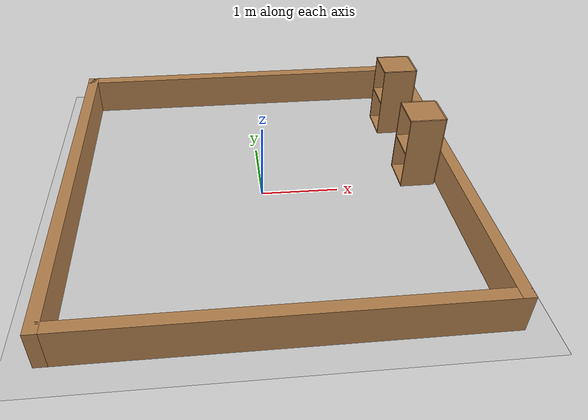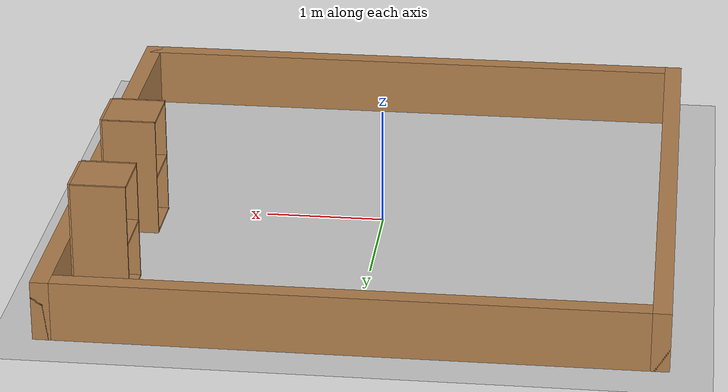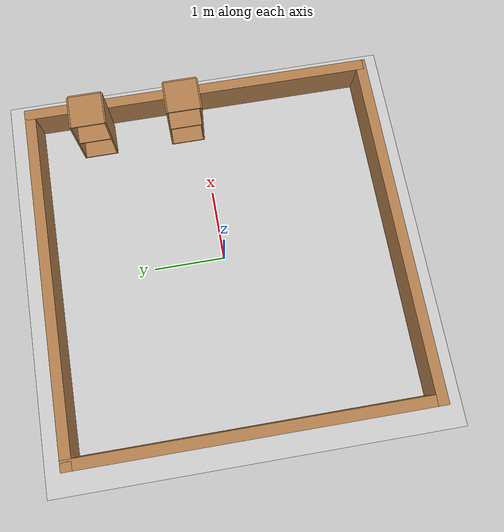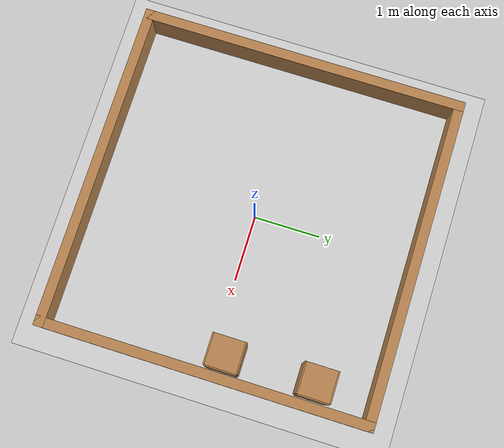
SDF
<sdf version="1.7">
 <world name="default">
  <model name="ground_plane">
   <static>1</static>
   <link name="link">
    <collision name="collision">
     <geometry><plane><normal>0 0 1</normal><size>100 100</size></plane></geometry>
     <surface><friction><ode><mu>100</mu><mu2>50</mu2></ode></friction></surface>
    </collision>
    <visual name="visual">
     <cast_shadows>0</cast_shadows>
     <geometry><plane><normal>0 0 1</normal><size>100 100</size></plane></geometry>
     <material>
      <script><uri>file://media/materials/scripts/gazebo.material</uri><name>Gazebo/Grey</name></script>
     </material>
    </visual>
   </link>
  </model>
  <light name="sun" type="directional">
   <pose>0 0 10 0 -0 0</pose>
   <diffuse>0.8 0.8 0.8 1</diffuse>
   <specular>0.2 0.2 0.2 1</specular>
   <attenuation>
    <range>1000</range>
    <constant>0.9</constant>
    <linear>0.01</linear>
    <quadratic>0.001</quadratic>
   </attenuation>
   <direction>-0.5 0.1 -0.9</direction>
   <spot><inner_angle>0</inner_angle><outer_angle>0</outer_angle><falloff>0</falloff></spot>
  </light>
  <scene><shadows>0</shadows><ambient>0.4 0.4 0.4 1</ambient><background>0.7 0.7 0.7 1</background></scene>
  <physics type="ode">
   <real_time_update_rate>1000</real_time_update_rate>
   <max_step_size>0.001</max_step_size>
   <real_time_factor>1</real_time_factor>
   <ode>
    <solver>
     <type>quick</type>
     <iters>150</iters>
     <precon_iters>0</precon_iters>
     <sor>1.4</sor>
     <use_dynamic_moi_rescaling>1</use_dynamic_moi_rescaling>
    </solver>
    <constraints>
     <cfm>1e-05</cfm>
     <erp>0.2</erp>
     <contact_max_correcting_vel>2000</contact_max_correcting_vel>
     <contact_surface_layer>0.01</contact_surface_layer>
    </constraints>
   </ode>
  </physics>
  <model name="turtlebot3_dqn_world">
   <pose>0.00548 -0.006455 0 0 -0 0</pose>
   <static>1</static>
   <frame name="turtlebot3_square::__model__" attached_to="turtlebot3_square::Wall_1">
    <pose relative_to="__model__">0 0 0 0 -0 0</pose>
   </frame>
   <link name="turtlebot3_square::Wall_1">
    <collision name="Wall_1_Collision">
     <geometry><box><size>5 0.15 0.5</size></box></geometry>
     <pose>0 0 0.25 0 -0 0</pose>
    </collision>
    <visual name="Wall_1_Visual">
     <pose>0 0 0.25 0 -0 0</pose>
     <geometry><box><size>5 0.15 0.5</size></box></geometry>
     <material>
      <script><uri>file://media/materials/scripts/gazebo.material</uri><name>Gazebo/Wood</name></script>
      <ambient>1 1 1 1</ambient>
     </material>
    </visual>
    <pose relative_to="turtlebot3_square::__model__">-2.425 0 0 0 -0 1.5708</pose>
   </link>
   <link name="turtlebot3_square::Wall_2">
    <collision name="Wall_2_Collision">
     <geometry><box><size>5 0.15 0.5</size></box></geometry>
     <pose>0 0 0.25 0 -0 0</pose>
    </collision>
    <visual name="Wall_2_Visual">
     <pose>0 0 0.25 0 -0 0</pose>
     <geometry><box><size>5 0.15 0.5</size></box></geometry>
     <material>
      <script><uri>file://media/materials/scripts/gazebo.material</uri><name>Gazebo/Wood</name></script>
      <ambient>1 1 1 1</ambient>
     </material>
    </visual>
    <pose relative_to="turtlebot3_square::__model__">0 2.425 0 0 -0 0</pose>
   </link>
   <link name="turtlebot3_square::Wall_3">
    <collision name="Wall_3_Collision">
     <geometry><box><size>5 0.15 0.5</size></box></geometry>
     <pose>0 0 0.25 0 -0 0</pose>
    </collision>
    <visual name="Wall_3_Visual">
     <pose>0 0 0.25 0 -0 0</pose>
     <geometry><box><size>5 0.15 0.5</size></box></geometry>
     <material>
      <script><uri>file://media/materials/scripts/gazebo.material</uri><name>Gazebo/Wood</name></script>
      <ambient>1 1 1 1</ambient>
     </material>
    </visual>
    <pose relative_to="turtlebot3_square::__model__">2.425 0 0 0 0 -1.5708</pose>
   </link>
   <link name="turtlebot3_square::Wall_4">
    <collision name="Wall_4_Collision">
     <geometry><box><size>5 0.15 0.5</size></box></geometry>
     <pose>0 0 0.25 0 -0 0</pose>
    </collision>
    <visual name="Wall_4_Visual">
     <pose>0 0 0.25 0 -0 0</pose>
     <geometry><box><size>5 0.15 0.5</size></box></geometry>
     <material>
      <script><uri>file://media/materials/scripts/gazebo.material</uri><name>Gazebo/Wood</name></script>
      <ambient>1 1 1 1</ambient>
     </material>
    </visual>
    <pose relative_to="turtlebot3_square::__model__">0 -2.425 0 0 -0 3.14159</pose>
   </link>
   <static>1</static>
  </model>
  <gravity>0 0 -9.8</gravity>
  <magnetic_field>6e-06 2.3e-05 -4.2e-05</magnetic_field>
  <atmosphere type="adiabatic"/>
  <audio><device>default</device></audio>
  <spherical_coordinates>
   <surface_model>EARTH_WGS84</surface_model>
   <latitude_deg>0</latitude_deg>
   <longitude_deg>0</longitude_deg>
   <elevation>0</elevation>
   <heading_deg>0</heading_deg>
  </spherical_coordinates>
  <model name="cabinet">
   <static>1</static>
   <link name="cabinet_bottom_plate">
    <inertial>
     <pose>0 0 -1 0 -0 0</pose>
     <inertia><ixx>2.05</ixx><ixy>0</ixy><ixz>0</ixz><iyy>2.05</iyy><iyz>0</iyz><izz>2.05</izz></inertia>
     <mass>25</mass>
    </inertial>
    <collision name="cabinet_bottom_plate_geom">
     <pose>0 0 0.01 0 -0 0</pose>
     <geometry><box><size>0.45 0.45 0.02</size></box></geometry>
    </collision>
    <visual name="cabinet_bottom_plate_geom_visual">
     <pose>0 0 0.01 0 -0 0</pose>
     <geometry><box><size>0.45 0.45 0.02</size></box></geometry>
     <material>
      <script><uri>file://media/materials/scripts/gazebo.material</uri><name>Gazebo/Wood</name></script>
     </material>
    </visual>
    <collision name="cabinet_bottom_plate_geom_cabinet_back_plate">
     <pose>0.235 0 0.51 0 -0 0</pose>
     <geometry><box><size>0.02 0.45 1.02</size></box></geometry>
    </collision>
    <visual name="cabinet_bottom_plate_geom_cabinet_back_plate_visual">
     <pose>0.235 0 0.51 0 -0 0</pose>
     <geometry><box><size>0.02 0.45 1.02</size></box></geometry>
     <material>
      <script><uri>file://media/materials/scripts/gazebo.material</uri><name>Gazebo/Wood</name></script>
     </material>
    </visual>
    <collision name="cabinet_bottom_plate_geom_cabinet_left_plate">
     <pose>0 0.235 0.51 0 -0 0</pose>
     <geometry><box><size>0.45 0.02 1.02</size></box></geometry>
    </collision>
    <visual name="cabinet_bottom_plate_geom_cabinet_left_plate_visual">
     <pose>0 0.235 0.51 0 -0 0</pose>
     <geometry><box><size>0.45 0.02 1.02</size></box></geometry>
     <material>
      <script><uri>file://media/materials/scripts/gazebo.material</uri><name>Gazebo/Wood</name></script>
     </material>
    </visual>
    <collision name="cabinet_bottom_plate_geom_cabinet_middle_plate">
     <pose>0 0 0.51 0 -0 0</pose>
     <geometry><box><size>0.45 0.45 0.02</size></box></geometry>
    </collision>
    <visual name="cabinet_bottom_plate_geom_cabinet_middle_plate_visual">
     <pose>0 0 0.51 0 -0 0</pose>
     <geometry><box><size>0.45 0.45 0.02</size></box></geometry>
     <material>
      <script><uri>file://media/materials/scripts/gazebo.material</uri><name>Gazebo/Wood</name></script>
     </material>
    </visual>
    <collision name="cabinet_bottom_plate_geom_cabinet_right_plate">
     <pose>0 -0.235 0.51 0 -0 0</pose>
     <geometry><box><size>0.45 0.02 1.02</size></box></geometry>
    </collision>
    <visual name="cabinet_bottom_plate_geom_cabinet_right_plate_visual">
     <pose>0 -0.235 0.51 0 -0 0</pose>
     <geometry><box><size>0.45 0.02 1.02</size></box></geometry>
     <material>
      <script><uri>file://media/materials/scripts/gazebo.material</uri><name>Gazebo/Wood</name></script>
     </material>
    </visual>
    <collision name="cabinet_bottom_plate_geom_cabinet_top_plate">
     <pose>0 0 1.01 0 -0 0</pose>
     <geometry><box><size>0.45 0.45 0.02</size></box></geometry>
    </collision>
    <visual name="cabinet_bottom_plate_geom_cabinet_top_plate_visual">
     <pose>0 0 1.01 0 -0 0</pose>
     <geometry><box><size>0.45 0.45 0.02</size></box></geometry>
     <material>
      <script><uri>file://media/materials/scripts/gazebo.material</uri><name>Gazebo/Wood</name></script>
     </material>
    </visual>
   </link>
   <pose>2.09193 0.230267 0 0 -0 0</pose>
  </model>
  <model name="cabinet_0">
   <static>1</static>
   <link name="cabinet_bottom_plate">
    <inertial>
     <pose>0 0 -1 0 -0 0</pose>
     <inertia><ixx>2.05</ixx><ixy>0</ixy><ixz>0</ixz><iyy>2.05</iyy><iyz>0</iyz><izz>2.05</izz></inertia>
     <mass>25</mass>
    </inertial>
    <collision name="cabinet_bottom_plate_geom">
     <pose>0 0 0.01 0 -0 0</pose>
     <geometry><box><size>0.45 0.45 0.02</size></box></geometry>
    </collision>
    <visual name="cabinet_bottom_plate_geom_visual">
     <pose>0 0 0.01 0 -0 0</pose>
     <geometry><box><size>0.45 0.45 0.02</size></box></geometry>
     <material>
      <script><uri>file://media/materials/scripts/gazebo.material</uri><name>Gazebo/Wood</name></script>
     </material>
    </visual>
    <collision name="cabinet_bottom_plate_geom_cabinet_back_plate">
     <pose>0.235 0 0.51 0 -0 0</pose>
     <geometry><box><size>0.02 0.45 1.02</size></box></geometry>
    </collision>
    <visual name="cabinet_bottom_plate_geom_cabinet_back_plate_visual">
     <pose>0.235 0 0.51 0 -0 0</pose>
     <geometry><box><size>0.02 0.45 1.02</size></box></geometry>
     <material>
      <script><uri>file://media/materials/scripts/gazebo.material</uri><name>Gazebo/Wood</name></script>
     </material>
    </visual>
    <collision name="cabinet_bottom_plate_geom_cabinet_left_plate">
     <pose>0 0.235 0.51 0 -0 0</pose>
     <geometry><box><size>0.45 0.02 1.02</size></box></geometry>
    </collision>
    <visual name="cabinet_bottom_plate_geom_cabinet_left_plate_visual">
     <pose>0 0.235 0.51 0 -0 0</pose>
     <geometry><box><size>0.45 0.02 1.02</size></box></geometry>
     <material>
      <script><uri>file://media/materials/scripts/gazebo.material</uri><name>Gazebo/Wood</name></script>
     </material>
    </visual>
    <collision name="cabinet_bottom_plate_geom_cabinet_middle_plate">
     <pose>0 0 0.51 0 -0 0</pose>
     <geometry><box><size>0.45 0.45 0.02</size></box></geometry>
    </collision>
    <visual name="cabinet_bottom_plate_geom_cabinet_middle_plate_visual">
     <pose>0 0 0.51 0 -0 0</pose>
     <geometry><box><size>0.45 0.45 0.02</size></box></geometry>
     <material>
      <script><uri>file://media/materials/scripts/gazebo.material</uri><name>Gazebo/Wood</name></script>
     </material>
    </visual>
    <collision name="cabinet_bottom_plate_geom_cabinet_right_plate">
     <pose>0 -0.235 0.51 0 -0 0</pose>
     <geometry><box><size>0.45 0.02 1.02</size></box></geometry>
    </collision>
    <visual name="cabinet_bottom_plate_geom_cabinet_right_plate_visual">
     <pose>0 -0.235 0.51 0 -0 0</pose>
     <geometry><box><size>0.45 0.02 1.02</size></box></geometry>
     <material>
      <script><uri>file://media/materials/scripts/gazebo.material</uri><name>Gazebo/Wood</name></script>
     </material>
    </visual>
    <collision name="cabinet_bottom_plate_geom_cabinet_top_plate">
     <pose>0 0 1.01 0 -0 0</pose>
     <geometry><box><size>0.45 0.45 0.02</size></box></geometry>
    </collision>
    <visual name="cabinet_bottom_plate_geom_cabinet_top_plate_visual">
     <pose>0 0 1.01 0 -0 0</pose>
     <geometry><box><size>0.45 0.45 0.02</size></box></geometry>
     <material>
      <script><uri>file://media/materials/scripts/gazebo.material</uri><name>Gazebo/Wood</name></script>
     </material>
    </visual>
   </link>
   <pose>2.08844 1.53729 0 0 -0 0</pose>
  </model>
 </world>
</sdf>
